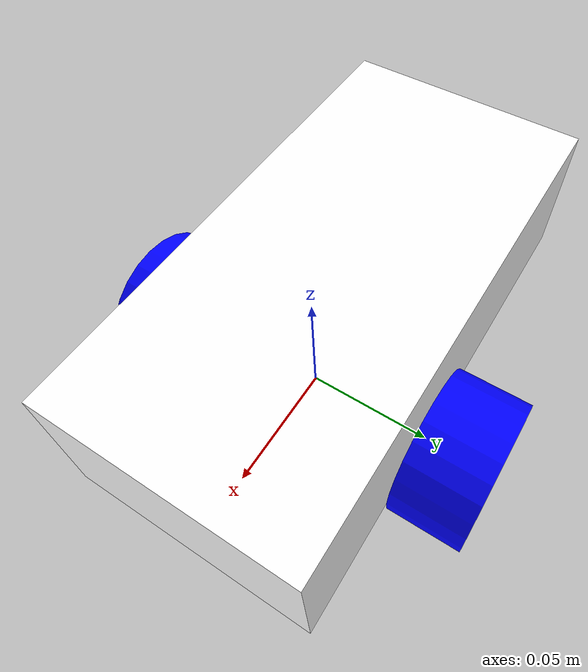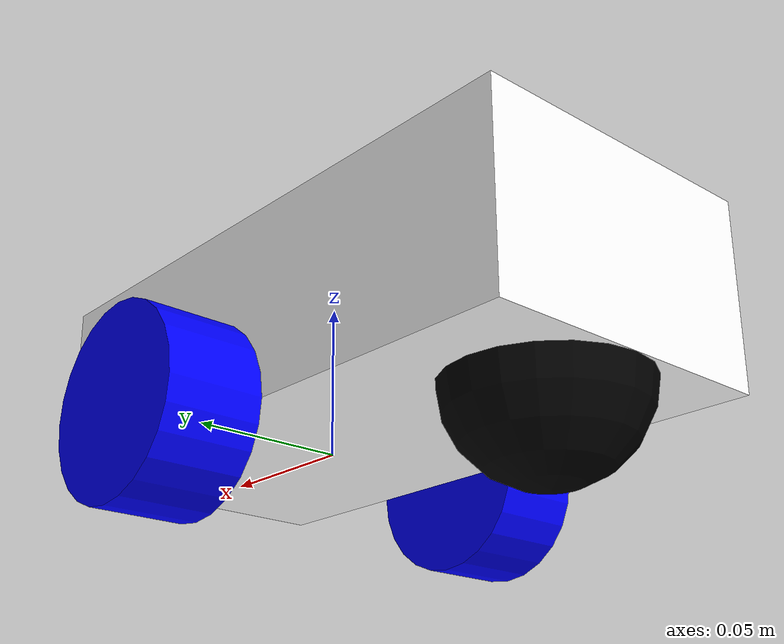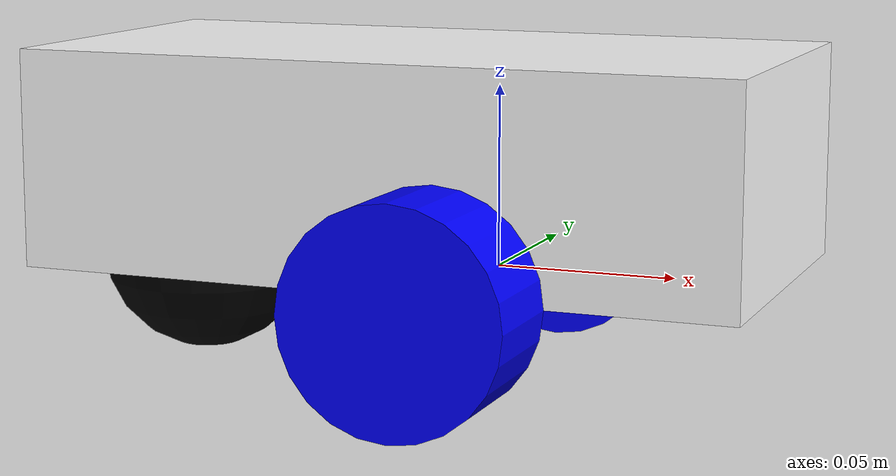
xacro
<?xml version="1.0"?>
<robot xmlns:xacro="http://www.ros.org/wiki/xacro" name="urdf_tutorial">

    <!-- MACROS -->
    <xacro:include filename="macros.xacro"/>

    <!-- COLOR -->
    <material name="white">
        <color rgba="1 1 1 1"/>
    </material>

    <material name="blue">
        <color rgba="0 0 1 1"/>
    </material>

    <material name="black">
        <color rgba="0 0 0 1"/>
    </material>

    <!-- BASE LINK -->
    <link name="base_link">
    </link>

    <!-- BODY LINK -->
    <joint name="body_joint" type="fixed">
        <parent link="base_link"/>
        <!-- 조인트의 기준이 되는 링크 : 기준 좌표계 제공 -->
        <child link="body"/>
        <!-- joint를 통해 parent에 연결되는 링크 -->
        <origin xyz="-0.12 0 0"/>
    </joint>

    <link name="body">
        <visual>
            <origin xyz="0.1 0 0.03"/>
            <geometry>
                <box size="0.2 0.1 0.06"/>
            </geometry>
            <material name="white"/>
        </visual>
        <collision>
            <origin xyz="0.1 0 0.03"/>
            <geometry>
                <box size="0.2 0.1 0.06"/>
            </geometry>
        </collision>
        <xacro:inertial_box mass="0.5" x="0.2" y="0.1" z="0.06">
            <origin xyz="0.1 0 0.03" rpy="0 0 0"/>
            <!-- 여기서 origin은 관성 중심과 관성 모멘트의 기준점을 정함-->
        </xacro:inertial_box>
    </link>

    <gazebo reference="body">
        <material>Gazebo/White</material>
    </gazebo>
    <!-- gazebo 시뮬레이션 전용 설정 태그-->

    <!-- LEFT WHEEL LINK -->
    <joint name="left_wheel_joint" type="continuous">
    <!-- continuous는 무한히 회전하는 조인트 -->
        <parent link="base_link"/>
        <child link="left_wheel"/>
        <origin xyz="0 0.065 0" rpy="-${pi/2} 0 0"/>
        <!-- rpy는 roll-pitch-yaw : 회전각 -->
        <axis xyz="0 0 1"/>
        <!-- continuous type이므로 회전하거나 움직이는 방향 지정 -->
    </joint>

    <link name="left_wheel">
        <visual>
            <geometry>
                <cylinder radius="0.03" length="0.03"/>
                <!-- 반지름과 폭 설정 -->
            </geometry>
            <material name="blue"/>
        </visual>
        <collision>
            <geometry>
                <cylinder radius="0.03" length="0.03"/>
            </geometry>
        </collision>
        <xacro:inertial_cylinder mass="0.1" length="0.03" radius="0.03">
            <origin xyz="0 0 0" rpy="0 0 0"/>
        </xacro:inertial_cylinder>
    </link>

    <gazebo reference="left_wheel">
        <material>Gazebo/Black</material>
    </gazebo>

    <!-- RIGHT WHEEL LINK -->
    <joint name="right_wheel_joint" type="continuous">
        <parent link="base_link"/>
        <child link="right_wheel"/>
        <origin xyz="0 -0.065 0" rpy="${pi/2} 0 0"/>
        <axis xyz="0 0 -1"/>
    </joint>

    <link name="right_wheel">
        <visual>
            <geometry>
                <cylinder radius="0.03" length="0.03"/>
            </geometry>
            <material name="blue"/>
        </visual>
        <collision>
            <geometry>
                <cylinder radius="0.03" length="0.03"/>
            </geometry>
        </collision>
        <xacro:inertial_cylinder mass="0.1" length="0.03" radius="0.03">
            <origin xyz="0 0 0" rpy="0 0 0"/>
        </xacro:inertial_cylinder>
    </link>

    <gazebo reference="right_wheel">
        <material>Gazebo/Black</material>
    </gazebo>

    <!-- CASTER WHEEL LINK -->
    <joint name="caster_wheel_joint" type="fixed">
        <parent link="body"/>
        <child link="caster_wheel"/>
        <origin xyz="0.03 0 0"/>
    </joint>

    <link name="caster_wheel">
        <visual>
            <geometry>
                <sphere radius="0.03"/>
            </geometry>
            <material name="black"/>
        </visual>
        <collision>
            <geometry>
                <sphere radius="0.03"/>
            </geometry>
        </collision>
        <xacro:inertial_sphere mass="0.1" radius="0.03">
            <origin xyz="0 0 0" rpy="0 0 0"/>
        </xacro:inertial_sphere>
    </link>

    <gazebo reference="caster_wheel">
        <material>Gazebo/Blue</material>

        <!-- mu1과 mu2는 마찰계수 -->
        <mu1 value="0.001"/> <!-- 주 마찰 방향(바퀴 회전방향) -->
        <mu2 value="0.001"/> <!-- 수직 마찰 방향(바퀴가 좌우로 미끄러지는 방향 -->
    </gazebo>

    <!-- GAZEBO -->
    <xacro:include filename="gazebo.xacro"/>

</robot>

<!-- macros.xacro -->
<robot xmlns:xacro="http://www.ros.org/wiki/xaccro">

    <xacro:macro name="inertial_sphere" params="mass radius *origin">
        <inertial>
            <xacro:insert_block name="origin"/>
            <mass value="${mass}"/>
            <inertia ixx="${(2/5)*mass*(radius*radius)}" ixy="0.0" ixz="0.0"
                    iyy="${(2/5)*mass*(radius*radius)}" iyz="0.0"
                    izz="${(2/5)*mass*(radius*radius)}"/>
        </inertial>
    </xacro:macro>

    <xacro:macro name="inertial_box" params="mass x y z *origin">
        <inertial>
            <xacro:insert_block name="origin"/>
            <mass value="${mass}"/>
            <inertia ixx="${(1/12)*mass*(y*y+z*z)}" ixy="0.0" ixz="0.0"
                    iyy="${(1/12)*mass*(x*x+z*z)}" iyz="0.0"
                    izz="${(1/12)*mass*(x*x+y*y)}"/>
        </inertial>
    </xacro:macro>

    <xacro:macro name="inertial_cylinder" params="mass length radius *origin">
        <inertial>
            <xacro:insert_block name="origin"/>
            <mass value="${mass}"/>
            <inertia ixx="${(1/12)*mass*(3*radius*radius+length*length)}" ixy="0.0" ixz="0.0"
                    iyy="${(1/12)*mass*(3*radius*radius+length*length)}" iyz="0.0"
                    izz="${(1/2)*mass*(radius*radius)}"/>
        </inertial>
    </xacro:macro>

</robot>

<!-- 관성 모멘트 계산식 : https://en.wikipedia.org/wiki/List_of_moments_of_inertia -->
